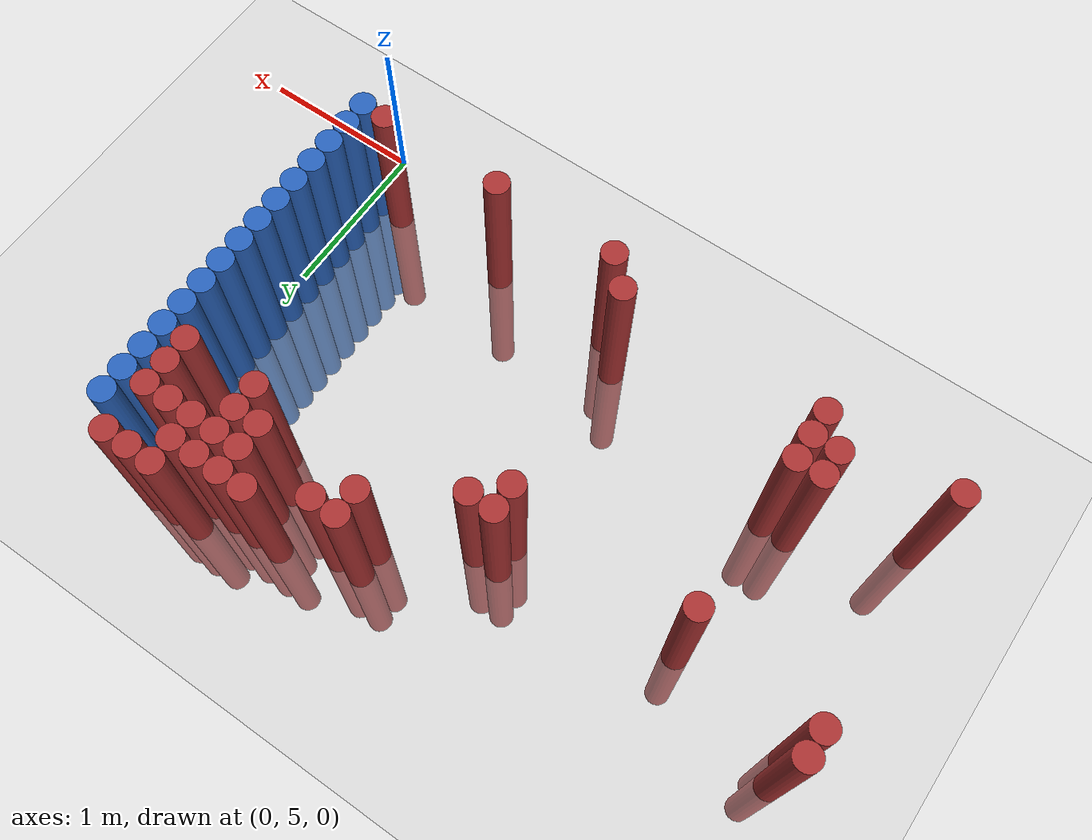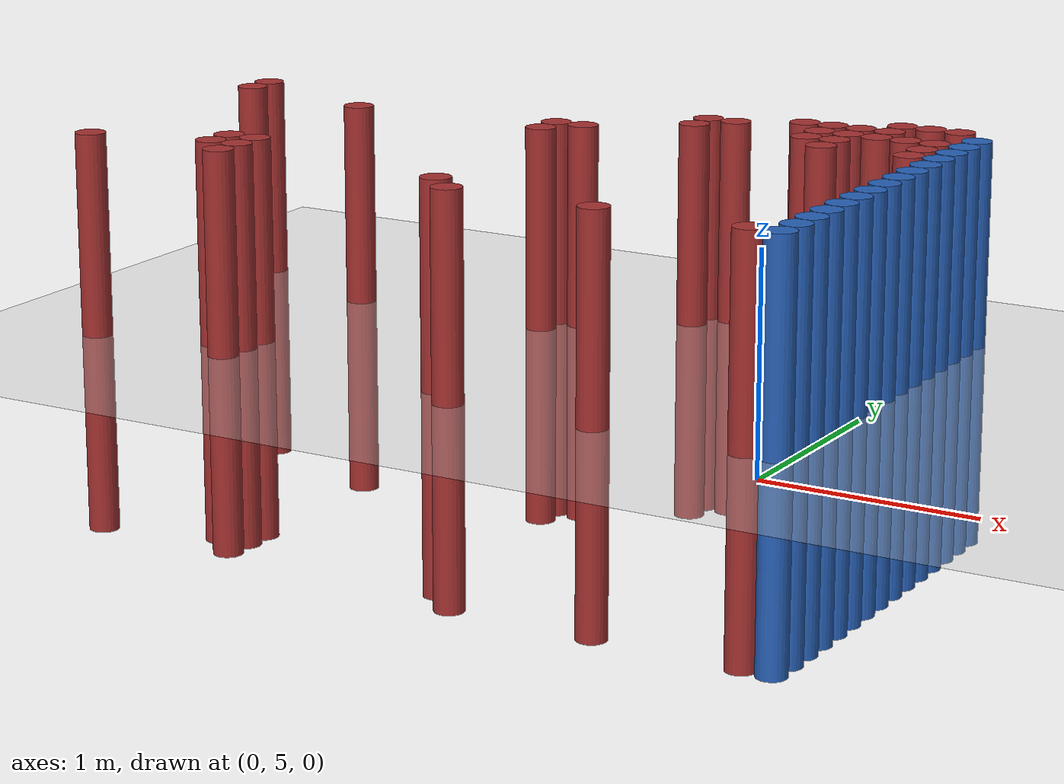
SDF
<sdf version="1.6">
 <world name="default">
  <model name="ground_plane">
   <static>1</static>
   <link name="link">
    <collision name="collision">
     <geometry><plane><normal>0 0 1</normal><size>100 100</size></plane></geometry>
     <surface><friction><ode><mu>100</mu><mu2>50</mu2></ode></friction></surface>
    </collision>
    <visual name="visual">
     <cast_shadows>0</cast_shadows>
     <geometry><plane><normal>0 0 1</normal><size>100 100</size></plane></geometry>
     <material>
      <script><uri>file://media/materials/scripts/gazebo.material</uri><name>Gazebo/Grey</name></script>
     </material>
    </visual>
   </link>
  </model>
  <model name="unit_cylinder_153">
   <static>1</static>
   <pose>-3.825000 5.475000 0.000000 0.000000 0.000000 0.000000</pose>
   <link name="link">
    <inertial>
     <mass>1</mass>
     <inertia><ixx>0.145833</ixx><ixy>0</ixy><ixz>0</ixz><iyy>0.145833</iyy><iyz>0</iyz><izz>0.125</izz></inertia>
    </inertial>
    <collision name="collision">
     <geometry><cylinder><radius>0.075000</radius><length>2</length></cylinder></geometry>
    </collision>
    <visual name="visual">
     <geometry><cylinder><radius>0.075000</radius><length>2</length></cylinder></geometry>
     <material>
      <ambient>0.648000 0.192000 0.192000 1</ambient>
      <diffuse>0.648000 0.192000 0.192000 1</diffuse>
     </material>
     <material>
      <script><name>Gazebo/Grey</name><uri>file://media/materials/scripts/gazebo.material</uri></script>
     </material>
    </visual>
   </link>
  </model>
  <model name="unit_cylinder_154">
   <static>1</static>
   <pose>-3.825000 6.825000 0.000000 0.000000 0.000000 0.000000</pose>
   <link name="link">
    <inertial>
     <mass>1</mass>
     <inertia><ixx>0.145833</ixx><ixy>0</ixy><ixz>0</ixz><iyy>0.145833</iyy><iyz>0</iyz><izz>0.125</izz></inertia>
    </inertial>
    <collision name="collision">
     <geometry><cylinder><radius>0.075000</radius><length>2</length></cylinder></geometry>
    </collision>
    <visual name="visual">
     <geometry><cylinder><radius>0.075000</radius><length>2</length></cylinder></geometry>
     <material>
      <ambient>0.648000 0.192000 0.192000 1</ambient>
      <diffuse>0.648000 0.192000 0.192000 1</diffuse>
     </material>
     <material>
      <script><name>Gazebo/Grey</name><uri>file://media/materials/scripts/gazebo.material</uri></script>
     </material>
    </visual>
   </link>
  </model>
  <model name="unit_cylinder_155">
   <static>1</static>
   <pose>-3.825000 6.975000 0.000000 0.000000 0.000000 0.000000</pose>
   <link name="link">
    <inertial>
     <mass>1</mass>
     <inertia><ixx>0.145833</ixx><ixy>0</ixy><ixz>0</ixz><iyy>0.145833</iyy><iyz>0</iyz><izz>0.125</izz></inertia>
    </inertial>
    <collision name="collision">
     <geometry><cylinder><radius>0.075000</radius><length>2</length></cylinder></geometry>
    </collision>
    <visual name="visual">
     <geometry><cylinder><radius>0.075000</radius><length>2</length></cylinder></geometry>
     <material>
      <ambient>0.648000 0.192000 0.192000 1</ambient>
      <diffuse>0.648000 0.192000 0.192000 1</diffuse>
     </material>
     <material>
      <script><name>Gazebo/Grey</name><uri>file://media/materials/scripts/gazebo.material</uri></script>
     </material>
    </visual>
   </link>
  </model>
  <model name="unit_cylinder_159">
   <static>1</static>
   <pose>-3.225000 5.625000 0.000000 0.000000 0.000000 0.000000</pose>
   <link name="link">
    <inertial>
     <mass>1</mass>
     <inertia><ixx>0.145833</ixx><ixy>0</ixy><ixz>0</ixz><iyy>0.145833</iyy><iyz>0</iyz><izz>0.125</izz></inertia>
    </inertial>
    <collision name="collision">
     <geometry><cylinder><radius>0.075000</radius><length>2</length></cylinder></geometry>
    </collision>
    <visual name="visual">
     <geometry><cylinder><radius>0.075000</radius><length>2</length></cylinder></geometry>
     <material>
      <ambient>0.648000 0.192000 0.192000 1</ambient>
      <diffuse>0.648000 0.192000 0.192000 1</diffuse>
     </material>
     <material>
      <script><name>Gazebo/Grey</name><uri>file://media/materials/scripts/gazebo.material</uri></script>
     </material>
    </visual>
   </link>
  </model>
  <model name="unit_cylinder_160">
   <static>1</static>
   <pose>-3.225000 5.775000 0.000000 0.000000 0.000000 0.000000</pose>
   <link name="link">
    <inertial>
     <mass>1</mass>
     <inertia><ixx>0.145833</ixx><ixy>0</ixy><ixz>0</ixz><iyy>0.145833</iyy><iyz>0</iyz><izz>0.125</izz></inertia>
    </inertial>
    <collision name="collision">
     <geometry><cylinder><radius>0.075000</radius><length>2</length></cylinder></geometry>
    </collision>
    <visual name="visual">
     <geometry><cylinder><radius>0.075000</radius><length>2</length></cylinder></geometry>
     <material>
      <ambient>0.648000 0.192000 0.192000 1</ambient>
      <diffuse>0.648000 0.192000 0.192000 1</diffuse>
     </material>
     <material>
      <script><name>Gazebo/Grey</name><uri>file://media/materials/scripts/gazebo.material</uri></script>
     </material>
    </visual>
   </link>
  </model>
  <model name="unit_cylinder_161">
   <static>1</static>
   <pose>-3.075000 5.475000 0.000000 0.000000 0.000000 0.000000</pose>
   <link name="link">
    <inertial>
     <mass>1</mass>
     <inertia><ixx>0.145833</ixx><ixy>0</ixy><ixz>0</ixz><iyy>0.145833</iyy><iyz>0</iyz><izz>0.125</izz></inertia>
    </inertial>
    <collision name="collision">
     <geometry><cylinder><radius>0.075000</radius><length>2</length></cylinder></geometry>
    </collision>
    <visual name="visual">
     <geometry><cylinder><radius>0.075000</radius><length>2</length></cylinder></geometry>
     <material>
      <ambient>0.648000 0.192000 0.192000 1</ambient>
      <diffuse>0.648000 0.192000 0.192000 1</diffuse>
     </material>
     <material>
      <script><name>Gazebo/Grey</name><uri>file://media/materials/scripts/gazebo.material</uri></script>
     </material>
    </visual>
   </link>
  </model>
  <model name="unit_cylinder_162">
   <static>1</static>
   <pose>-3.075000 5.625000 0.000000 0.000000 0.000000 0.000000</pose>
   <link name="link">
    <inertial>
     <mass>1</mass>
     <inertia><ixx>0.145833</ixx><ixy>0</ixy><ixz>0</ixz><iyy>0.145833</iyy><iyz>0</iyz><izz>0.125</izz></inertia>
    </inertial>
    <collision name="collision">
     <geometry><cylinder><radius>0.075000</radius><length>2</length></cylinder></geometry>
    </collision>
    <visual name="visual">
     <geometry><cylinder><radius>0.075000</radius><length>2</length></cylinder></geometry>
     <material>
      <ambient>0.648000 0.192000 0.192000 1</ambient>
      <diffuse>0.648000 0.192000 0.192000 1</diffuse>
     </material>
     <material>
      <script><name>Gazebo/Grey</name><uri>file://media/materials/scripts/gazebo.material</uri></script>
     </material>
    </visual>
   </link>
  </model>
  <model name="unit_cylinder_163">
   <static>1</static>
   <pose>-3.075000 5.775000 0.000000 0.000000 0.000000 0.000000</pose>
   <link name="link">
    <inertial>
     <mass>1</mass>
     <inertia><ixx>0.145833</ixx><ixy>0</ixy><ixz>0</ixz><iyy>0.145833</iyy><iyz>0</iyz><izz>0.125</izz></inertia>
    </inertial>
    <collision name="collision">
     <geometry><cylinder><radius>0.075000</radius><length>2</length></cylinder></geometry>
    </collision>
    <visual name="visual">
     <geometry><cylinder><radius>0.075000</radius><length>2</length></cylinder></geometry>
     <material>
      <ambient>0.648000 0.192000 0.192000 1</ambient>
      <diffuse>0.648000 0.192000 0.192000 1</diffuse>
     </material>
     <material>
      <script><name>Gazebo/Grey</name><uri>file://media/materials/scripts/gazebo.material</uri></script>
     </material>
    </visual>
   </link>
  </model>
  <model name="unit_cylinder_164">
   <static>1</static>
   <pose>-3.075000 6.675000 0.000000 0.000000 0.000000 0.000000</pose>
   <link name="link">
    <inertial>
     <mass>1</mass>
     <inertia><ixx>0.145833</ixx><ixy>0</ixy><ixz>0</ixz><iyy>0.145833</iyy><iyz>0</iyz><izz>0.125</izz></inertia>
    </inertial>
    <collision name="collision">
     <geometry><cylinder><radius>0.075000</radius><length>2</length></cylinder></geometry>
    </collision>
    <visual name="visual">
     <geometry><cylinder><radius>0.075000</radius><length>2</length></cylinder></geometry>
     <material>
      <ambient>0.648000 0.192000 0.192000 1</ambient>
      <diffuse>0.648000 0.192000 0.192000 1</diffuse>
     </material>
     <material>
      <script><name>Gazebo/Grey</name><uri>file://media/materials/scripts/gazebo.material</uri></script>
     </material>
    </visual>
   </link>
  </model>
  <model name="unit_cylinder_168">
   <static>1</static>
   <pose>-2.025000 6.675000 0.000000 0.000000 0.000000 0.000000</pose>
   <link name="link">
    <inertial>
     <mass>1</mass>
     <inertia><ixx>0.145833</ixx><ixy>0</ixy><ixz>0</ixz><iyy>0.145833</iyy><iyz>0</iyz><izz>0.125</izz></inertia>
    </inertial>
    <collision name="collision">
     <geometry><cylinder><radius>0.075000</radius><length>2</length></cylinder></geometry>
    </collision>
    <visual name="visual">
     <geometry><cylinder><radius>0.075000</radius><length>2</length></cylinder></geometry>
     <material>
      <ambient>0.648000 0.192000 0.192000 1</ambient>
      <diffuse>0.648000 0.192000 0.192000 1</diffuse>
     </material>
     <material>
      <script><name>Gazebo/Grey</name><uri>file://media/materials/scripts/gazebo.material</uri></script>
     </material>
    </visual>
   </link>
  </model>
  <model name="unit_cylinder_169">
   <static>1</static>
   <pose>-2.025000 6.825000 0.000000 0.000000 0.000000 0.000000</pose>
   <link name="link">
    <inertial>
     <mass>1</mass>
     <inertia><ixx>0.145833</ixx><ixy>0</ixy><ixz>0</ixz><iyy>0.145833</iyy><iyz>0</iyz><izz>0.125</izz></inertia>
    </inertial>
    <collision name="collision">
     <geometry><cylinder><radius>0.075000</radius><length>2</length></cylinder></geometry>
    </collision>
    <visual name="visual">
     <geometry><cylinder><radius>0.075000</radius><length>2</length></cylinder></geometry>
     <material>
      <ambient>0.648000 0.192000 0.192000 1</ambient>
      <diffuse>0.648000 0.192000 0.192000 1</diffuse>
     </material>
     <material>
      <script><name>Gazebo/Grey</name><uri>file://media/materials/scripts/gazebo.material</uri></script>
     </material>
    </visual>
   </link>
  </model>
  <model name="unit_cylinder_172">
   <static>1</static>
   <pose>-1.875000 5.475000 0.000000 0.000000 0.000000 0.000000</pose>
   <link name="link">
    <inertial>
     <mass>1</mass>
     <inertia><ixx>0.145833</ixx><ixy>0</ixy><ixz>0</ixz><iyy>0.145833</iyy><iyz>0</iyz><izz>0.125</izz></inertia>
    </inertial>
    <collision name="collision">
     <geometry><cylinder><radius>0.075000</radius><length>2</length></cylinder></geometry>
    </collision>
    <visual name="visual">
     <geometry><cylinder><radius>0.075000</radius><length>2</length></cylinder></geometry>
     <material>
      <ambient>0.648000 0.192000 0.192000 1</ambient>
      <diffuse>0.648000 0.192000 0.192000 1</diffuse>
     </material>
     <material>
      <script><name>Gazebo/Grey</name><uri>file://media/materials/scripts/gazebo.material</uri></script>
     </material>
    </visual>
   </link>
  </model>
  <model name="unit_cylinder_173">
   <static>1</static>
   <pose>-1.875000 6.825000 0.000000 0.000000 0.000000 0.000000</pose>
   <link name="link">
    <inertial>
     <mass>1</mass>
     <inertia><ixx>0.145833</ixx><ixy>0</ixy><ixz>0</ixz><iyy>0.145833</iyy><iyz>0</iyz><izz>0.125</izz></inertia>
    </inertial>
    <collision name="collision">
     <geometry><cylinder><radius>0.075000</radius><length>2</length></cylinder></geometry>
    </collision>
    <visual name="visual">
     <geometry><cylinder><radius>0.075000</radius><length>2</length></cylinder></geometry>
     <material>
      <ambient>0.648000 0.192000 0.192000 1</ambient>
      <diffuse>0.648000 0.192000 0.192000 1</diffuse>
     </material>
     <material>
      <script><name>Gazebo/Grey</name><uri>file://media/materials/scripts/gazebo.material</uri></script>
     </material>
    </visual>
   </link>
  </model>
  <model name="unit_cylinder_174">
   <static>1</static>
   <pose>-1.725000 5.325000 0.000000 0.000000 0.000000 0.000000</pose>
   <link name="link">
    <inertial>
     <mass>1</mass>
     <inertia><ixx>0.145833</ixx><ixy>0</ixy><ixz>0</ixz><iyy>0.145833</iyy><iyz>0</iyz><izz>0.125</izz></inertia>
    </inertial>
    <collision name="collision">
     <geometry><cylinder><radius>0.075000</radius><length>2</length></cylinder></geometry>
    </collision>
    <visual name="visual">
     <geometry><cylinder><radius>0.075000</radius><length>2</length></cylinder></geometry>
     <material>
      <ambient>0.648000 0.192000 0.192000 1</ambient>
      <diffuse>0.648000 0.192000 0.192000 1</diffuse>
     </material>
     <material>
      <script><name>Gazebo/Grey</name><uri>file://media/materials/scripts/gazebo.material</uri></script>
     </material>
    </visual>
   </link>
  </model>
  <model name="unit_cylinder_181">
   <static>1</static>
   <pose>-1.425000 7.125000 0.000000 0.000000 0.000000 0.000000</pose>
   <link name="link">
    <inertial>
     <mass>1</mass>
     <inertia><ixx>0.145833</ixx><ixy>0</ixy><ixz>0</ixz><iyy>0.145833</iyy><iyz>0</iyz><izz>0.125</izz></inertia>
    </inertial>
    <collision name="collision">
     <geometry><cylinder><radius>0.075000</radius><length>2</length></cylinder></geometry>
    </collision>
    <visual name="visual">
     <geometry><cylinder><radius>0.075000</radius><length>2</length></cylinder></geometry>
     <material>
      <ambient>0.648000 0.192000 0.192000 1</ambient>
      <diffuse>0.648000 0.192000 0.192000 1</diffuse>
     </material>
     <material>
      <script><name>Gazebo/Grey</name><uri>file://media/materials/scripts/gazebo.material</uri></script>
     </material>
    </visual>
   </link>
  </model>
  <model name="unit_cylinder_182">
   <static>1</static>
   <pose>-1.425000 7.275000 0.000000 0.000000 0.000000 0.000000</pose>
   <link name="link">
    <inertial>
     <mass>1</mass>
     <inertia><ixx>0.145833</ixx><ixy>0</ixy><ixz>0</ixz><iyy>0.145833</iyy><iyz>0</iyz><izz>0.125</izz></inertia>
    </inertial>
    <collision name="collision">
     <geometry><cylinder><radius>0.075000</radius><length>2</length></cylinder></geometry>
    </collision>
    <visual name="visual">
     <geometry><cylinder><radius>0.075000</radius><length>2</length></cylinder></geometry>
     <material>
      <ambient>0.648000 0.192000 0.192000 1</ambient>
      <diffuse>0.648000 0.192000 0.192000 1</diffuse>
     </material>
     <material>
      <script><name>Gazebo/Grey</name><uri>file://media/materials/scripts/gazebo.material</uri></script>
     </material>
    </visual>
   </link>
  </model>
  <model name="unit_cylinder_186">
   <static>1</static>
   <pose>-1.275000 7.275000 0.000000 0.000000 0.000000 0.000000</pose>
   <link name="link">
    <inertial>
     <mass>1</mass>
     <inertia><ixx>0.145833</ixx><ixy>0</ixy><ixz>0</ixz><iyy>0.145833</iyy><iyz>0</iyz><izz>0.125</izz></inertia>
    </inertial>
    <collision name="collision">
     <geometry><cylinder><radius>0.075000</radius><length>2</length></cylinder></geometry>
    </collision>
    <visual name="visual">
     <geometry><cylinder><radius>0.075000</radius><length>2</length></cylinder></geometry>
     <material>
      <ambient>0.648000 0.192000 0.192000 1</ambient>
      <diffuse>0.648000 0.192000 0.192000 1</diffuse>
     </material>
     <material>
      <script><name>Gazebo/Grey</name><uri>file://media/materials/scripts/gazebo.material</uri></script>
     </material>
    </visual>
   </link>
  </model>
  <model name="unit_cylinder_194">
   <static>1</static>
   <pose>-0.975000 5.325000 0.000000 0.000000 0.000000 0.000000</pose>
   <link name="link">
    <inertial>
     <mass>1</mass>
     <inertia><ixx>0.145833</ixx><ixy>0</ixy><ixz>0</ixz><iyy>0.145833</iyy><iyz>0</iyz><izz>0.125</izz></inertia>
    </inertial>
    <collision name="collision">
     <geometry><cylinder><radius>0.075000</radius><length>2</length></cylinder></geometry>
    </collision>
    <visual name="visual">
     <geometry><cylinder><radius>0.075000</radius><length>2</length></cylinder></geometry>
     <material>
      <ambient>0.648000 0.192000 0.192000 1</ambient>
      <diffuse>0.648000 0.192000 0.192000 1</diffuse>
     </material>
     <material>
      <script><name>Gazebo/Grey</name><uri>file://media/materials/scripts/gazebo.material</uri></script>
     </material>
    </visual>
   </link>
  </model>
  <model name="unit_cylinder_195">
   <static>1</static>
   <pose>-0.975000 7.425000 0.000000 0.000000 0.000000 0.000000</pose>
   <link name="link">
    <inertial>
     <mass>1</mass>
     <inertia><ixx>0.145833</ixx><ixy>0</ixy><ixz>0</ixz><iyy>0.145833</iyy><iyz>0</iyz><izz>0.125</izz></inertia>
    </inertial>
    <collision name="collision">
     <geometry><cylinder><radius>0.075000</radius><length>2</length></cylinder></geometry>
    </collision>
    <visual name="visual">
     <geometry><cylinder><radius>0.075000</radius><length>2</length></cylinder></geometry>
     <material>
      <ambient>0.648000 0.192000 0.192000 1</ambient>
      <diffuse>0.648000 0.192000 0.192000 1</diffuse>
     </material>
     <material>
      <script><name>Gazebo/Grey</name><uri>file://media/materials/scripts/gazebo.material</uri></script>
     </material>
    </visual>
   </link>
  </model>
  <model name="unit_cylinder_198">
   <static>1</static>
   <pose>-0.825000 7.125000 0.000000 0.000000 0.000000 0.000000</pose>
   <link name="link">
    <inertial>
     <mass>1</mass>
     <inertia><ixx>0.145833</ixx><ixy>0</ixy><ixz>0</ixz><iyy>0.145833</iyy><iyz>0</iyz><izz>0.125</izz></inertia>
    </inertial>
    <collision name="collision">
     <geometry><cylinder><radius>0.075000</radius><length>2</length></cylinder></geometry>
    </collision>
    <visual name="visual">
     <geometry><cylinder><radius>0.075000</radius><length>2</length></cylinder></geometry>
     <material>
      <ambient>0.648000 0.192000 0.192000 1</ambient>
      <diffuse>0.648000 0.192000 0.192000 1</diffuse>
     </material>
     <material>
      <script><name>Gazebo/Grey</name><uri>file://media/materials/scripts/gazebo.material</uri></script>
     </material>
    </visual>
   </link>
  </model>
  <model name="unit_cylinder_199">
   <static>1</static>
   <pose>-0.825000 7.275000 0.000000 0.000000 0.000000 0.000000</pose>
   <link name="link">
    <inertial>
     <mass>1</mass>
     <inertia><ixx>0.145833</ixx><ixy>0</ixy><ixz>0</ixz><iyy>0.145833</iyy><iyz>0</iyz><izz>0.125</izz></inertia>
    </inertial>
    <collision name="collision">
     <geometry><cylinder><radius>0.075000</radius><length>2</length></cylinder></geometry>
    </collision>
    <visual name="visual">
     <geometry><cylinder><radius>0.075000</radius><length>2</length></cylinder></geometry>
     <material>
      <ambient>0.648000 0.192000 0.192000 1</ambient>
      <diffuse>0.648000 0.192000 0.192000 1</diffuse>
     </material>
     <material>
      <script><name>Gazebo/Grey</name><uri>file://media/materials/scripts/gazebo.material</uri></script>
     </material>
    </visual>
   </link>
  </model>
  <model name="unit_cylinder_200">
   <static>1</static>
   <pose>-0.825000 7.425000 0.000000 0.000000 0.000000 0.000000</pose>
   <link name="link">
    <inertial>
     <mass>1</mass>
     <inertia><ixx>0.145833</ixx><ixy>0</ixy><ixz>0</ixz><iyy>0.145833</iyy><iyz>0</iyz><izz>0.125</izz></inertia>
    </inertial>
    <collision name="collision">
     <geometry><cylinder><radius>0.075000</radius><length>2</length></cylinder></geometry>
    </collision>
    <visual name="visual">
     <geometry><cylinder><radius>0.075000</radius><length>2</length></cylinder></geometry>
     <material>
      <ambient>0.648000 0.192000 0.192000 1</ambient>
      <diffuse>0.648000 0.192000 0.192000 1</diffuse>
     </material>
     <material>
      <script><name>Gazebo/Grey</name><uri>file://media/materials/scripts/gazebo.material</uri></script>
     </material>
    </visual>
   </link>
  </model>
  <model name="unit_cylinder_201">
   <static>1</static>
   <pose>-0.675000 6.975000 0.000000 0.000000 0.000000 0.000000</pose>
   <link name="link">
    <inertial>
     <mass>1</mass>
     <inertia><ixx>0.145833</ixx><ixy>0</ixy><ixz>0</ixz><iyy>0.145833</iyy><iyz>0</iyz><izz>0.125</izz></inertia>
    </inertial>
    <collision name="collision">
     <geometry><cylinder><radius>0.075000</radius><length>2</length></cylinder></geometry>
    </collision>
    <visual name="visual">
     <geometry><cylinder><radius>0.075000</radius><length>2</length></cylinder></geometry>
     <material>
      <ambient>0.648000 0.192000 0.192000 1</ambient>
      <diffuse>0.648000 0.192000 0.192000 1</diffuse>
     </material>
     <material>
      <script><name>Gazebo/Grey</name><uri>file://media/materials/scripts/gazebo.material</uri></script>
     </material>
    </visual>
   </link>
  </model>
  <model name="unit_cylinder_202">
   <static>1</static>
   <pose>-0.675000 7.125000 0.000000 0.000000 0.000000 0.000000</pose>
   <link name="link">
    <inertial>
     <mass>1</mass>
     <inertia><ixx>0.145833</ixx><ixy>0</ixy><ixz>0</ixz><iyy>0.145833</iyy><iyz>0</iyz><izz>0.125</izz></inertia>
    </inertial>
    <collision name="collision">
     <geometry><cylinder><radius>0.075000</radius><length>2</length></cylinder></geometry>
    </collision>
    <visual name="visual">
     <geometry><cylinder><radius>0.075000</radius><length>2</length></cylinder></geometry>
     <material>
      <ambient>0.648000 0.192000 0.192000 1</ambient>
      <diffuse>0.648000 0.192000 0.192000 1</diffuse>
     </material>
     <material>
      <script><name>Gazebo/Grey</name><uri>file://media/materials/scripts/gazebo.material</uri></script>
     </material>
    </visual>
   </link>
  </model>
  <model name="unit_cylinder_203">
   <static>1</static>
   <pose>-0.675000 7.275000 0.000000 0.000000 0.000000 0.000000</pose>
   <link name="link">
    <inertial>
     <mass>1</mass>
     <inertia><ixx>0.145833</ixx><ixy>0</ixy><ixz>0</ixz><iyy>0.145833</iyy><iyz>0</iyz><izz>0.125</izz></inertia>
    </inertial>
    <collision name="collision">
     <geometry><cylinder><radius>0.075000</radius><length>2</length></cylinder></geometry>
    </collision>
    <visual name="visual">
     <geometry><cylinder><radius>0.075000</radius><length>2</length></cylinder></geometry>
     <material>
      <ambient>0.648000 0.192000 0.192000 1</ambient>
      <diffuse>0.648000 0.192000 0.192000 1</diffuse>
     </material>
     <material>
      <script><name>Gazebo/Grey</name><uri>file://media/materials/scripts/gazebo.material</uri></script>
     </material>
    </visual>
   </link>
  </model>
  <model name="unit_cylinder_204">
   <static>1</static>
   <pose>-0.675000 7.425000 0.000000 0.000000 0.000000 0.000000</pose>
   <link name="link">
    <inertial>
     <mass>1</mass>
     <inertia><ixx>0.145833</ixx><ixy>0</ixy><ixz>0</ixz><iyy>0.145833</iyy><iyz>0</iyz><izz>0.125</izz></inertia>
    </inertial>
    <collision name="collision">
     <geometry><cylinder><radius>0.075000</radius><length>2</length></cylinder></geometry>
    </collision>
    <visual name="visual">
     <geometry><cylinder><radius>0.075000</radius><length>2</length></cylinder></geometry>
     <material>
      <ambient>0.648000 0.192000 0.192000 1</ambient>
      <diffuse>0.648000 0.192000 0.192000 1</diffuse>
     </material>
     <material>
      <script><name>Gazebo/Grey</name><uri>file://media/materials/scripts/gazebo.material</uri></script>
     </material>
    </visual>
   </link>
  </model>
  <model name="unit_cylinder_205">
   <static>1</static>
   <pose>-0.525000 7.275000 0.000000 0.000000 0.000000 0.000000</pose>
   <link name="link">
    <inertial>
     <mass>1</mass>
     <inertia><ixx>0.145833</ixx><ixy>0</ixy><ixz>0</ixz><iyy>0.145833</iyy><iyz>0</iyz><izz>0.125</izz></inertia>
    </inertial>
    <collision name="collision">
     <geometry><cylinder><radius>0.075000</radius><length>2</length></cylinder></geometry>
    </collision>
    <visual name="visual">
     <geometry><cylinder><radius>0.075000</radius><length>2</length></cylinder></geometry>
     <material>
      <ambient>0.648000 0.192000 0.192000 1</ambient>
      <diffuse>0.648000 0.192000 0.192000 1</diffuse>
     </material>
     <material>
      <script><name>Gazebo/Grey</name><uri>file://media/materials/scripts/gazebo.material</uri></script>
     </material>
    </visual>
   </link>
  </model>
  <model name="unit_cylinder_206">
   <static>1</static>
   <pose>-0.525000 7.425000 0.000000 0.000000 0.000000 0.000000</pose>
   <link name="link">
    <inertial>
     <mass>1</mass>
     <inertia><ixx>0.145833</ixx><ixy>0</ixy><ixz>0</ixz><iyy>0.145833</iyy><iyz>0</iyz><izz>0.125</izz></inertia>
    </inertial>
    <collision name="collision">
     <geometry><cylinder><radius>0.075000</radius><length>2</length></cylinder></geometry>
    </collision>
    <visual name="visual">
     <geometry><cylinder><radius>0.075000</radius><length>2</length></cylinder></geometry>
     <material>
      <ambient>0.648000 0.192000 0.192000 1</ambient>
      <diffuse>0.648000 0.192000 0.192000 1</diffuse>
     </material>
     <material>
      <script><name>Gazebo/Grey</name><uri>file://media/materials/scripts/gazebo.material</uri></script>
     </material>
    </visual>
   </link>
  </model>
  <model name="unit_cylinder_207">
   <static>1</static>
   <pose>-0.525000 7.575000 0.000000 0.000000 0.000000 0.000000</pose>
   <link name="link">
    <inertial>
     <mass>1</mass>
     <inertia><ixx>0.145833</ixx><ixy>0</ixy><ixz>0</ixz><iyy>0.145833</iyy><iyz>0</iyz><izz>0.125</izz></inertia>
    </inertial>
    <collision name="collision">
     <geometry><cylinder><radius>0.075000</radius><length>2</length></cylinder></geometry>
    </collision>
    <visual name="visual">
     <geometry><cylinder><radius>0.075000</radius><length>2</length></cylinder></geometry>
     <material>
      <ambient>0.648000 0.192000 0.192000 1</ambient>
      <diffuse>0.648000 0.192000 0.192000 1</diffuse>
     </material>
     <material>
      <script><name>Gazebo/Grey</name><uri>file://media/materials/scripts/gazebo.material</uri></script>
     </material>
    </visual>
   </link>
  </model>
  <model name="unit_cylinder_210">
   <static>1</static>
   <pose>-0.375000 7.275000 0.000000 0.000000 0.000000 0.000000</pose>
   <link name="link">
    <inertial>
     <mass>1</mass>
     <inertia><ixx>0.145833</ixx><ixy>0</ixy><ixz>0</ixz><iyy>0.145833</iyy><iyz>0</iyz><izz>0.125</izz></inertia>
    </inertial>
    <collision name="collision">
     <geometry><cylinder><radius>0.075000</radius><length>2</length></cylinder></geometry>
    </collision>
    <visual name="visual">
     <geometry><cylinder><radius>0.075000</radius><length>2</length></cylinder></geometry>
     <material>
      <ambient>0.648000 0.192000 0.192000 1</ambient>
      <diffuse>0.648000 0.192000 0.192000 1</diffuse>
     </material>
     <material>
      <script><name>Gazebo/Grey</name><uri>file://media/materials/scripts/gazebo.material</uri></script>
     </material>
    </visual>
   </link>
  </model>
  <model name="unit_cylinder_211">
   <static>1</static>
   <pose>-0.375000 7.575000 0.000000 0.000000 0.000000 0.000000</pose>
   <link name="link">
    <inertial>
     <mass>1</mass>
     <inertia><ixx>0.145833</ixx><ixy>0</ixy><ixz>0</ixz><iyy>0.145833</iyy><iyz>0</iyz><izz>0.125</izz></inertia>
    </inertial>
    <collision name="collision">
     <geometry><cylinder><radius>0.075000</radius><length>2</length></cylinder></geometry>
    </collision>
    <visual name="visual">
     <geometry><cylinder><radius>0.075000</radius><length>2</length></cylinder></geometry>
     <material>
      <ambient>0.648000 0.192000 0.192000 1</ambient>
      <diffuse>0.648000 0.192000 0.192000 1</diffuse>
     </material>
     <material>
      <script><name>Gazebo/Grey</name><uri>file://media/materials/scripts/gazebo.material</uri></script>
     </material>
    </visual>
   </link>
  </model>
  <model name="unit_cylinder_216">
   <static>1</static>
   <pose>-0.225000 5.325000 0.000000 0.000000 0.000000 0.000000</pose>
   <link name="link">
    <inertial>
     <mass>1</mass>
     <inertia><ixx>0.145833</ixx><ixy>0</ixy><ixz>0</ixz><iyy>0.145833</iyy><iyz>0</iyz><izz>0.125</izz></inertia>
    </inertial>
    <collision name="collision">
     <geometry><cylinder><radius>0.075000</radius><length>2</length></cylinder></geometry>
    </collision>
    <visual name="visual">
     <geometry><cylinder><radius>0.075000</radius><length>2</length></cylinder></geometry>
     <material>
      <ambient>0.648000 0.192000 0.192000 1</ambient>
      <diffuse>0.648000 0.192000 0.192000 1</diffuse>
     </material>
     <material>
      <script><name>Gazebo/Grey</name><uri>file://media/materials/scripts/gazebo.material</uri></script>
     </material>
    </visual>
   </link>
  </model>
  <model name="unit_cylinder_217">
   <static>1</static>
   <pose>-0.225000 6.975000 0.000000 0.000000 0.000000 0.000000</pose>
   <link name="link">
    <inertial>
     <mass>1</mass>
     <inertia><ixx>0.145833</ixx><ixy>0</ixy><ixz>0</ixz><iyy>0.145833</iyy><iyz>0</iyz><izz>0.125</izz></inertia>
    </inertial>
    <collision name="collision">
     <geometry><cylinder><radius>0.075000</radius><length>2</length></cylinder></geometry>
    </collision>
    <visual name="visual">
     <geometry><cylinder><radius>0.075000</radius><length>2</length></cylinder></geometry>
     <material>
      <ambient>0.648000 0.192000 0.192000 1</ambient>
      <diffuse>0.648000 0.192000 0.192000 1</diffuse>
     </material>
     <material>
      <script><name>Gazebo/Grey</name><uri>file://media/materials/scripts/gazebo.material</uri></script>
     </material>
    </visual>
   </link>
  </model>
  <model name="unit_cylinder_218">
   <static>1</static>
   <pose>-0.225000 7.125000 0.000000 0.000000 0.000000 0.000000</pose>
   <link name="link">
    <inertial>
     <mass>1</mass>
     <inertia><ixx>0.145833</ixx><ixy>0</ixy><ixz>0</ixz><iyy>0.145833</iyy><iyz>0</iyz><izz>0.125</izz></inertia>
    </inertial>
    <collision name="collision">
     <geometry><cylinder><radius>0.075000</radius><length>2</length></cylinder></geometry>
    </collision>
    <visual name="visual">
     <geometry><cylinder><radius>0.075000</radius><length>2</length></cylinder></geometry>
     <material>
      <ambient>0.648000 0.192000 0.192000 1</ambient>
      <diffuse>0.648000 0.192000 0.192000 1</diffuse>
     </material>
     <material>
      <script><name>Gazebo/Grey</name><uri>file://media/materials/scripts/gazebo.material</uri></script>
     </material>
    </visual>
   </link>
  </model>
  <model name="unit_cylinder_219">
   <static>1</static>
   <pose>-0.225000 7.275000 0.000000 0.000000 0.000000 0.000000</pose>
   <link name="link">
    <inertial>
     <mass>1</mass>
     <inertia><ixx>0.145833</ixx><ixy>0</ixy><ixz>0</ixz><iyy>0.145833</iyy><iyz>0</iyz><izz>0.125</izz></inertia>
    </inertial>
    <collision name="collision">
     <geometry><cylinder><radius>0.075000</radius><length>2</length></cylinder></geometry>
    </collision>
    <visual name="visual">
     <geometry><cylinder><radius>0.075000</radius><length>2</length></cylinder></geometry>
     <material>
      <ambient>0.648000 0.192000 0.192000 1</ambient>
      <diffuse>0.648000 0.192000 0.192000 1</diffuse>
     </material>
     <material>
      <script><name>Gazebo/Grey</name><uri>file://media/materials/scripts/gazebo.material</uri></script>
     </material>
    </visual>
   </link>
  </model>
  <model name="unit_cylinder_220">
   <static>1</static>
   <pose>-0.225000 7.575000 0.000000 0.000000 0.000000 0.000000</pose>
   <link name="link">
    <inertial>
     <mass>1</mass>
     <inertia><ixx>0.145833</ixx><ixy>0</ixy><ixz>0</ixz><iyy>0.145833</iyy><iyz>0</iyz><izz>0.125</izz></inertia>
    </inertial>
    <collision name="collision">
     <geometry><cylinder><radius>0.075000</radius><length>2</length></cylinder></geometry>
    </collision>
    <visual name="visual">
     <geometry><cylinder><radius>0.075000</radius><length>2</length></cylinder></geometry>
     <material>
      <ambient>0.648000 0.192000 0.192000 1</ambient>
      <diffuse>0.648000 0.192000 0.192000 1</diffuse>
     </material>
     <material>
      <script><name>Gazebo/Grey</name><uri>file://media/materials/scripts/gazebo.material</uri></script>
     </material>
    </visual>
   </link>
  </model>
  <model name="unit_cylinder_230">
   <static>1</static>
   <pose>-0.075000 5.325000 0.000000 0.000000 0.000000 0.000000</pose>
   <link name="link">
    <inertial>
     <mass>1</mass>
     <inertia><ixx>0.145833</ixx><ixy>0</ixy><ixz>0</ixz><iyy>0.145833</iyy><iyz>0</iyz><izz>0.125</izz></inertia>
    </inertial>
    <collision name="collision">
     <geometry><cylinder><radius>0.075000</radius><length>2</length></cylinder></geometry>
    </collision>
    <visual name="visual">
     <geometry><cylinder><radius>0.075000</radius><length>2</length></cylinder></geometry>
     <material>
      <ambient>0.152000 0.379000 0.720000 1</ambient>
      <diffuse>0.152000 0.379000 0.720000 1</diffuse>
     </material>
     <material>
      <script><name>Gazebo/Grey</name><uri>file://media/materials/scripts/gazebo.material</uri></script>
     </material>
    </visual>
   </link>
  </model>
  <model name="unit_cylinder_231">
   <static>1</static>
   <pose>-0.075000 5.475000 0.000000 0.000000 0.000000 0.000000</pose>
   <link name="link">
    <inertial>
     <mass>1</mass>
     <inertia><ixx>0.145833</ixx><ixy>0</ixy><ixz>0</ixz><iyy>0.145833</iyy><iyz>0</iyz><izz>0.125</izz></inertia>
    </inertial>
    <collision name="collision">
     <geometry><cylinder><radius>0.075000</radius><length>2</length></cylinder></geometry>
    </collision>
    <visual name="visual">
     <geometry><cylinder><radius>0.075000</radius><length>2</length></cylinder></geometry>
     <material>
      <ambient>0.152000 0.379000 0.720000 1</ambient>
      <diffuse>0.152000 0.379000 0.720000 1</diffuse>
     </material>
     <material>
      <script><name>Gazebo/Grey</name><uri>file://media/materials/scripts/gazebo.material</uri></script>
     </material>
    </visual>
   </link>
  </model>
  <model name="unit_cylinder_232">
   <static>1</static>
   <pose>-0.075000 5.625000 0.000000 0.000000 0.000000 0.000000</pose>
   <link name="link">
    <inertial>
     <mass>1</mass>
     <inertia><ixx>0.145833</ixx><ixy>0</ixy><ixz>0</ixz><iyy>0.145833</iyy><iyz>0</iyz><izz>0.125</izz></inertia>
    </inertial>
    <collision name="collision">
     <geometry><cylinder><radius>0.075000</radius><length>2</length></cylinder></geometry>
    </collision>
    <visual name="visual">
     <geometry><cylinder><radius>0.075000</radius><length>2</length></cylinder></geometry>
     <material>
      <ambient>0.152000 0.379000 0.720000 1</ambient>
      <diffuse>0.152000 0.379000 0.720000 1</diffuse>
     </material>
     <material>
      <script><name>Gazebo/Grey</name><uri>file://media/materials/scripts/gazebo.material</uri></script>
     </material>
    </visual>
   </link>
  </model>
  <model name="unit_cylinder_233">
   <static>1</static>
   <pose>-0.075000 5.775000 0.000000 0.000000 0.000000 0.000000</pose>
   <link name="link">
    <inertial>
     <mass>1</mass>
     <inertia><ixx>0.145833</ixx><ixy>0</ixy><ixz>0</ixz><iyy>0.145833</iyy><iyz>0</iyz><izz>0.125</izz></inertia>
    </inertial>
    <collision name="collision">
     <geometry><cylinder><radius>0.075000</radius><length>2</length></cylinder></geometry>
    </collision>
    <visual name="visual">
     <geometry><cylinder><radius>0.075000</radius><length>2</length></cylinder></geometry>
     <material>
      <ambient>0.152000 0.379000 0.720000 1</ambient>
      <diffuse>0.152000 0.379000 0.720000 1</diffuse>
     </material>
     <material>
      <script><name>Gazebo/Grey</name><uri>file://media/materials/scripts/gazebo.material</uri></script>
     </material>
    </visual>
   </link>
  </model>
  <model name="unit_cylinder_234">
   <static>1</static>
   <pose>-0.075000 5.925000 0.000000 0.000000 0.000000 0.000000</pose>
   <link name="link">
    <inertial>
     <mass>1</mass>
     <inertia><ixx>0.145833</ixx><ixy>0</ixy><ixz>0</ixz><iyy>0.145833</iyy><iyz>0</iyz><izz>0.125</izz></inertia>
    </inertial>
    <collision name="collision">
     <geometry><cylinder><radius>0.075000</radius><length>2</length></cylinder></geometry>
    </collision>
    <visual name="visual">
     <geometry><cylinder><radius>0.075000</radius><length>2</length></cylinder></geometry>
     <material>
      <ambient>0.152000 0.379000 0.720000 1</ambient>
      <diffuse>0.152000 0.379000 0.720000 1</diffuse>
     </material>
     <material>
      <script><name>Gazebo/Grey</name><uri>file://media/materials/scripts/gazebo.material</uri></script>
     </material>
    </visual>
   </link>
  </model>
  <model name="unit_cylinder_235">
   <static>1</static>
   <pose>-0.075000 6.075000 0.000000 0.000000 0.000000 0.000000</pose>
   <link name="link">
    <inertial>
     <mass>1</mass>
     <inertia><ixx>0.145833</ixx><ixy>0</ixy><ixz>0</ixz><iyy>0.145833</iyy><iyz>0</iyz><izz>0.125</izz></inertia>
    </inertial>
    <collision name="collision">
     <geometry><cylinder><radius>0.075000</radius><length>2</length></cylinder></geometry>
    </collision>
    <visual name="visual">
     <geometry><cylinder><radius>0.075000</radius><length>2</length></cylinder></geometry>
     <material>
      <ambient>0.152000 0.379000 0.720000 1</ambient>
      <diffuse>0.152000 0.379000 0.720000 1</diffuse>
     </material>
     <material>
      <script><name>Gazebo/Grey</name><uri>file://media/materials/scripts/gazebo.material</uri></script>
     </material>
    </visual>
   </link>
  </model>
  <model name="unit_cylinder_236">
   <static>1</static>
   <pose>-0.075000 6.225000 0.000000 0.000000 0.000000 0.000000</pose>
   <link name="link">
    <inertial>
     <mass>1</mass>
     <inertia><ixx>0.145833</ixx><ixy>0</ixy><ixz>0</ixz><iyy>0.145833</iyy><iyz>0</iyz><izz>0.125</izz></inertia>
    </inertial>
    <collision name="collision">
     <geometry><cylinder><radius>0.075000</radius><length>2</length></cylinder></geometry>
    </collision>
    <visual name="visual">
     <geometry><cylinder><radius>0.075000</radius><length>2</length></cylinder></geometry>
     <material>
      <ambient>0.152000 0.379000 0.720000 1</ambient>
      <diffuse>0.152000 0.379000 0.720000 1</diffuse>
     </material>
     <material>
      <script><name>Gazebo/Grey</name><uri>file://media/materials/scripts/gazebo.material</uri></script>
     </material>
    </visual>
   </link>
  </model>
  <model name="unit_cylinder_237">
   <static>1</static>
   <pose>-0.075000 6.375000 0.000000 0.000000 0.000000 0.000000</pose>
   <link name="link">
    <inertial>
     <mass>1</mass>
     <inertia><ixx>0.145833</ixx><ixy>0</ixy><ixz>0</ixz><iyy>0.145833</iyy><iyz>0</iyz><izz>0.125</izz></inertia>
    </inertial>
    <collision name="collision">
     <geometry><cylinder><radius>0.075000</radius><length>2</length></cylinder></geometry>
    </collision>
    <visual name="visual">
     <geometry><cylinder><radius>0.075000</radius><length>2</length></cylinder></geometry>
     <material>
      <ambient>0.152000 0.379000 0.720000 1</ambient>
      <diffuse>0.152000 0.379000 0.720000 1</diffuse>
     </material>
     <material>
      <script><name>Gazebo/Grey</name><uri>file://media/materials/scripts/gazebo.material</uri></script>
     </material>
    </visual>
   </link>
  </model>
  <model name="unit_cylinder_238">
   <static>1</static>
   <pose>-0.075000 6.525000 0.000000 0.000000 0.000000 0.000000</pose>
   <link name="link">
    <inertial>
     <mass>1</mass>
     <inertia><ixx>0.145833</ixx><ixy>0</ixy><ixz>0</ixz><iyy>0.145833</iyy><iyz>0</iyz><izz>0.125</izz></inertia>
    </inertial>
    <collision name="collision">
     <geometry><cylinder><radius>0.075000</radius><length>2</length></cylinder></geometry>
    </collision>
    <visual name="visual">
     <geometry><cylinder><radius>0.075000</radius><length>2</length></cylinder></geometry>
     <material>
      <ambient>0.152000 0.379000 0.720000 1</ambient>
      <diffuse>0.152000 0.379000 0.720000 1</diffuse>
     </material>
     <material>
      <script><name>Gazebo/Grey</name><uri>file://media/materials/scripts/gazebo.material</uri></script>
     </material>
    </visual>
   </link>
  </model>
  <model name="unit_cylinder_239">
   <static>1</static>
   <pose>-0.075000 6.675000 0.000000 0.000000 0.000000 0.000000</pose>
   <link name="link">
    <inertial>
     <mass>1</mass>
     <inertia><ixx>0.145833</ixx><ixy>0</ixy><ixz>0</ixz><iyy>0.145833</iyy><iyz>0</iyz><izz>0.125</izz></inertia>
    </inertial>
    <collision name="collision">
     <geometry><cylinder><radius>0.075000</radius><length>2</length></cylinder></geometry>
    </collision>
    <visual name="visual">
     <geometry><cylinder><radius>0.075000</radius><length>2</length></cylinder></geometry>
     <material>
      <ambient>0.152000 0.379000 0.720000 1</ambient>
      <diffuse>0.152000 0.379000 0.720000 1</diffuse>
     </material>
     <material>
      <script><name>Gazebo/Grey</name><uri>file://media/materials/scripts/gazebo.material</uri></script>
     </material>
    </visual>
   </link>
  </model>
  <model name="unit_cylinder_240">
   <static>1</static>
   <pose>-0.075000 6.825000 0.000000 0.000000 0.000000 0.000000</pose>
   <link name="link">
    <inertial>
     <mass>1</mass>
     <inertia><ixx>0.145833</ixx><ixy>0</ixy><ixz>0</ixz><iyy>0.145833</iyy><iyz>0</iyz><izz>0.125</izz></inertia>
    </inertial>
    <collision name="collision">
     <geometry><cylinder><radius>0.075000</radius><length>2</length></cylinder></geometry>
    </collision>
    <visual name="visual">
     <geometry><cylinder><radius>0.075000</radius><length>2</length></cylinder></geometry>
     <material>
      <ambient>0.152000 0.379000 0.720000 1</ambient>
      <diffuse>0.152000 0.379000 0.720000 1</diffuse>
     </material>
     <material>
      <script><name>Gazebo/Grey</name><uri>file://media/materials/scripts/gazebo.material</uri></script>
     </material>
    </visual>
   </link>
  </model>
  <model name="unit_cylinder_241">
   <static>1</static>
   <pose>-0.075000 6.975000 0.000000 0.000000 0.000000 0.000000</pose>
   <link name="link">
    <inertial>
     <mass>1</mass>
     <inertia><ixx>0.145833</ixx><ixy>0</ixy><ixz>0</ixz><iyy>0.145833</iyy><iyz>0</iyz><izz>0.125</izz></inertia>
    </inertial>
    <collision name="collision">
     <geometry><cylinder><radius>0.075000</radius><length>2</length></cylinder></geometry>
    </collision>
    <visual name="visual">
     <geometry><cylinder><radius>0.075000</radius><length>2</length></cylinder></geometry>
     <material>
      <ambient>0.152000 0.379000 0.720000 1</ambient>
      <diffuse>0.152000 0.379000 0.720000 1</diffuse>
     </material>
     <material>
      <script><name>Gazebo/Grey</name><uri>file://media/materials/scripts/gazebo.material</uri></script>
     </material>
    </visual>
   </link>
  </model>
  <model name="unit_cylinder_242">
   <static>1</static>
   <pose>-0.075000 7.125000 0.000000 0.000000 0.000000 0.000000</pose>
   <link name="link">
    <inertial>
     <mass>1</mass>
     <inertia><ixx>0.145833</ixx><ixy>0</ixy><ixz>0</ixz><iyy>0.145833</iyy><iyz>0</iyz><izz>0.125</izz></inertia>
    </inertial>
    <collision name="collision">
     <geometry><cylinder><radius>0.075000</radius><length>2</length></cylinder></geometry>
    </collision>
    <visual name="visual">
     <geometry><cylinder><radius>0.075000</radius><length>2</length></cylinder></geometry>
     <material>
      <ambient>0.152000 0.379000 0.720000 1</ambient>
      <diffuse>0.152000 0.379000 0.720000 1</diffuse>
     </material>
     <material>
      <script><name>Gazebo/Grey</name><uri>file://media/materials/scripts/gazebo.material</uri></script>
     </material>
    </visual>
   </link>
  </model>
  <model name="unit_cylinder_243">
   <static>1</static>
   <pose>-0.075000 7.275000 0.000000 0.000000 0.000000 0.000000</pose>
   <link name="link">
    <inertial>
     <mass>1</mass>
     <inertia><ixx>0.145833</ixx><ixy>0</ixy><ixz>0</ixz><iyy>0.145833</iyy><iyz>0</iyz><izz>0.125</izz></inertia>
    </inertial>
    <collision name="collision">
     <geometry><cylinder><radius>0.075000</radius><length>2</length></cylinder></geometry>
    </collision>
    <visual name="visual">
     <geometry><cylinder><radius>0.075000</radius><length>2</length></cylinder></geometry>
     <material>
      <ambient>0.152000 0.379000 0.720000 1</ambient>
      <diffuse>0.152000 0.379000 0.720000 1</diffuse>
     </material>
     <material>
      <script><name>Gazebo/Grey</name><uri>file://media/materials/scripts/gazebo.material</uri></script>
     </material>
    </visual>
   </link>
  </model>
  <model name="unit_cylinder_244">
   <static>1</static>
   <pose>-0.075000 7.425000 0.000000 0.000000 0.000000 0.000000</pose>
   <link name="link">
    <inertial>
     <mass>1</mass>
     <inertia><ixx>0.145833</ixx><ixy>0</ixy><ixz>0</ixz><iyy>0.145833</iyy><iyz>0</iyz><izz>0.125</izz></inertia>
    </inertial>
    <collision name="collision">
     <geometry><cylinder><radius>0.075000</radius><length>2</length></cylinder></geometry>
    </collision>
    <visual name="visual">
     <geometry><cylinder><radius>0.075000</radius><length>2</length></cylinder></geometry>
     <material>
      <ambient>0.152000 0.379000 0.720000 1</ambient>
      <diffuse>0.152000 0.379000 0.720000 1</diffuse>
     </material>
     <material>
      <script><name>Gazebo/Grey</name><uri>file://media/materials/scripts/gazebo.material</uri></script>
     </material>
    </visual>
   </link>
  </model>
 </world>
</sdf>
